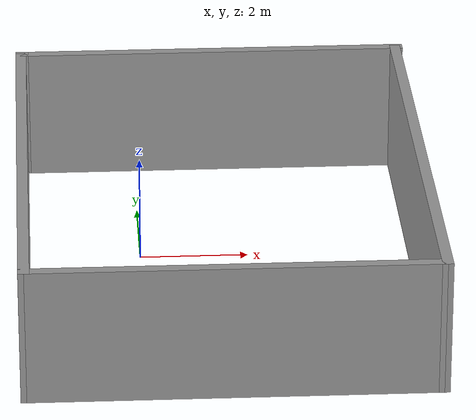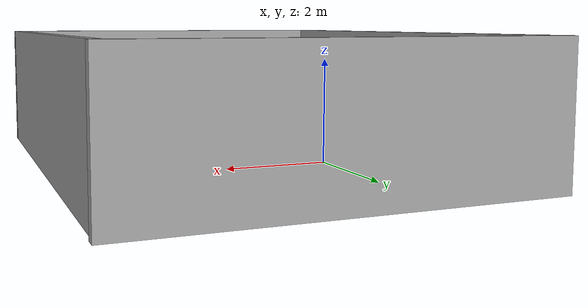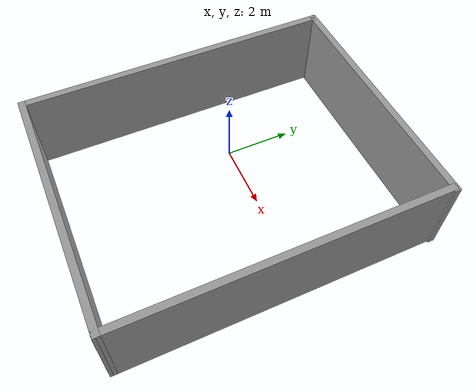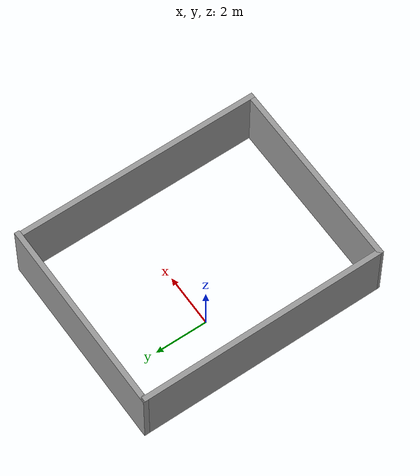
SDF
<?xml version='1.0'?>
<sdf version='1.4'>
  <model name='scene1'>
    <link name='Wall_0'>
      <collision name='Wall_0_Collision'>
        <geometry>
          <box>
            <size>9.49087 0.2 2.5</size>
          </box>
        </geometry>
        <pose>0 0 1.25 0 -0 0</pose>
      </collision>
      <visual name='Wall_0_Visual'>
        <pose>0 0 1.25 0 -0 0</pose>
        <geometry>
          <box>
            <size>9.49087 0.2 2.5</size>
          </box>
        </geometry>
        <material>
          <script>
            <uri>file://media/materials/scripts/gazebo.material</uri>
            <name>Gazebo/Grey</name>
          </script>
        </material>
      </visual>
      <velocity_decay>
        <linear>0</linear>
        <angular>0</angular>
      </velocity_decay>
      <pose>5.09928 -0.779194 0 0 0 -1.5708</pose>
    </link>
    <link name='Wall_1'>
      <collision name='Wall_1_Collision'>
        <geometry>
          <box>
            <size>7.45929 0.2 2.5</size>
          </box>
        </geometry>
        <pose>0 0 1.25 0 -0 0</pose>
      </collision>
      <visual name='Wall_1_Visual'>
        <pose>0 0 1.25 0 -0 0</pose>
        <geometry>
          <box>
            <size>7.45929 0.2 2.5</size>
          </box>
        </geometry>
        <material>
          <script>
            <uri>file://media/materials/scripts/gazebo.material</uri>
            <name>Gazebo/Grey</name>
          </script>
        </material>
      </visual>
      <velocity_decay>
        <linear>0</linear>
        <angular>0</angular>
      </velocity_decay>
      <pose>1.46964 -5.41856 0 0 -0 3.13992</pose>
    </link>
    <link name='Wall_2'>
      <collision name='Wall_2_Collision'>
        <geometry>
          <box>
            <size>9.46222 0.2 2.5</size>
          </box>
        </geometry>
        <pose>0 0 1.25 0 -0 0</pose>
      </collision>
      <visual name='Wall_2_Visual'>
        <pose>0 0 1.25 0 -0 0</pose>
        <geometry>
          <box>
            <size>9.46222 0.2 2.5</size>
          </box>
        </geometry>
        <material>
          <script>
            <uri>file://media/materials/scripts/gazebo.material</uri>
            <name>Gazebo/Grey</name>
          </script>
        </material>
      </visual>
      <velocity_decay>
        <linear>0</linear>
        <angular>0</angular>
      </velocity_decay>
      <pose>-2.16 -0.781385 0 0 -0 1.5708</pose>
    </link>
    <link name='Wall_4'>
      <collision name='Wall_4_Collision'>
        <geometry>
          <box>
            <size>7.50425 0.2 2.5</size>
          </box>
        </geometry>
        <pose>0 0 1.25 0 -0 0</pose>
      </collision>
      <visual name='Wall_4_Visual'>
        <pose>0 0 1.25 0 -0 0</pose>
        <geometry>
          <box>
            <size>7.50425 0.2 2.5</size>
          </box>
        </geometry>
        <material>
          <script>
            <uri>file://media/materials/scripts/gazebo.material</uri>
            <name>Gazebo/Grey</name>
          </script>
        </material>
      </visual>
      <velocity_decay>
        <linear>0</linear>
        <angular>0</angular>
      </velocity_decay>
      <pose>1.49023 3.91267 0 0 -0 3.14159</pose>
    </link>
    <link name='Wall_5'>
      <collision name='Wall_5_Collision'>
        <geometry>
          <box>
            <size>0.246524 0.2 2.5</size>
          </box>
        </geometry>
        <pose>0 0 1.25 0 -0 0</pose>
      </collision>
      <visual name='Wall_5_Visual'>
        <pose>0 0 1.25 0 -0 0</pose>
        <geometry>
          <box>
            <size>0.246524 0.2 2.5</size>
          </box>
        </geometry>
        <material>
          <script>
            <uri>file://media/materials/scripts/gazebo.material</uri>
            <name>Gazebo/Grey</name>
          </script>
        </material>
      </visual>
      <velocity_decay>
        <linear>0</linear>
        <angular>0</angular>
      </velocity_decay>
      <pose>-2.13864 3.91267 0 0 -0 0</pose>
    </link>
    <static>1</static>
  </model>
</sdf>
